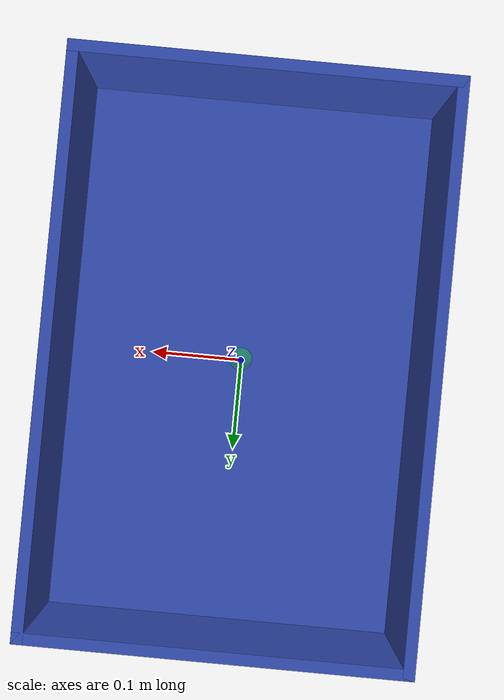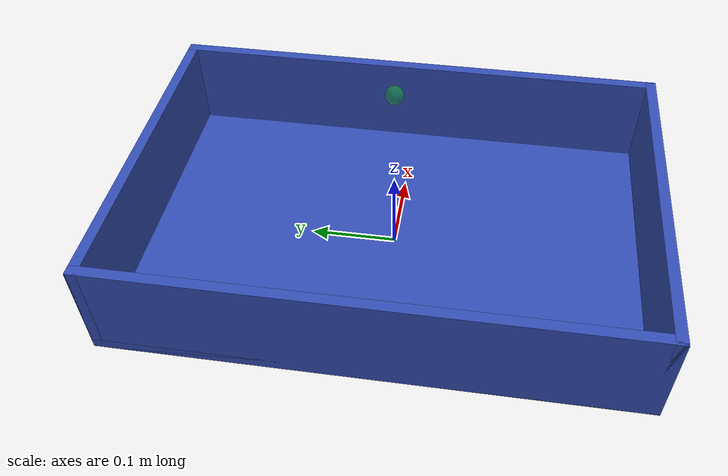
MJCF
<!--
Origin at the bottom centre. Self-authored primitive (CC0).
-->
<mujoco model="tote">
  <asset>
    <material name="mat" rgba="0.20 0.30 0.70 1"/>
  </asset>
  <worldbody>
    <body name="tote">
      <geom name="bottom" type="box" size="0.2 0.3 0.006" pos="0 0 0.006" material="mat" friction="0.9 0.02 0.0005" condim="4"/>
      <geom name="wall_px" type="box" size="0.006 0.3 0.06" pos="0.194 0 0.06" material="mat" friction="0.9 0.02 0.0005" condim="4"/>
      <geom name="wall_nx" type="box" size="0.006 0.3 0.06" pos="-0.194 0 0.06" material="mat" friction="0.9 0.02 0.0005" condim="4"/>
      <geom name="wall_py" type="box" size="0.2 0.006 0.06" pos="0 0.294 0.06" material="mat" friction="0.9 0.02 0.0005" condim="4"/>
      <geom name="wall_ny" type="box" size="0.2 0.006 0.06" pos="0 -0.294 0.06" material="mat" friction="0.9 0.02 0.0005" condim="4"/>
      <site name="drop" size="0.01" pos="0 0 0.22" rgba="0 1 0 0.3"/>
    </body>
  </worldbody>
</mujoco>
